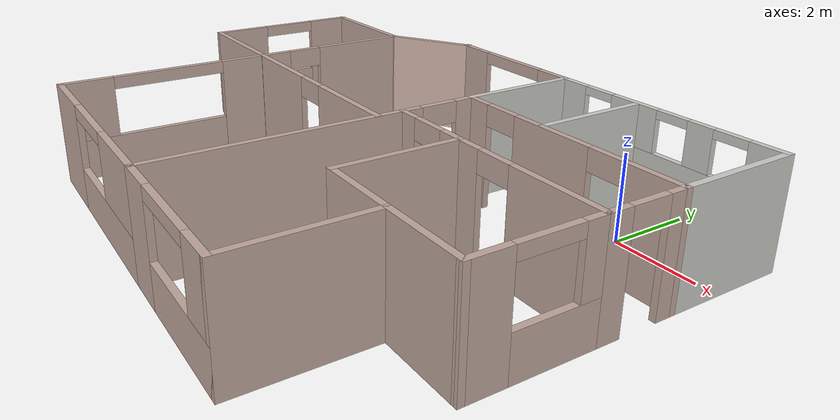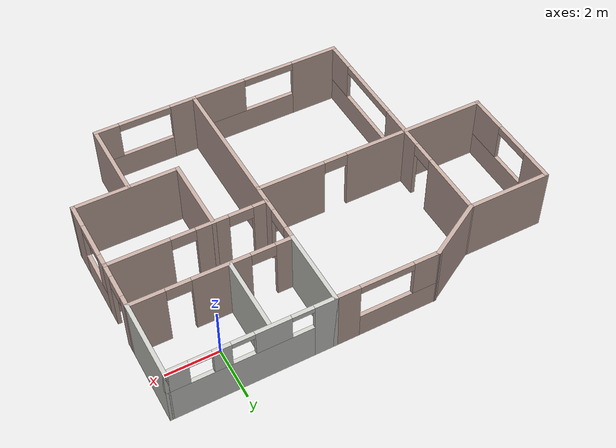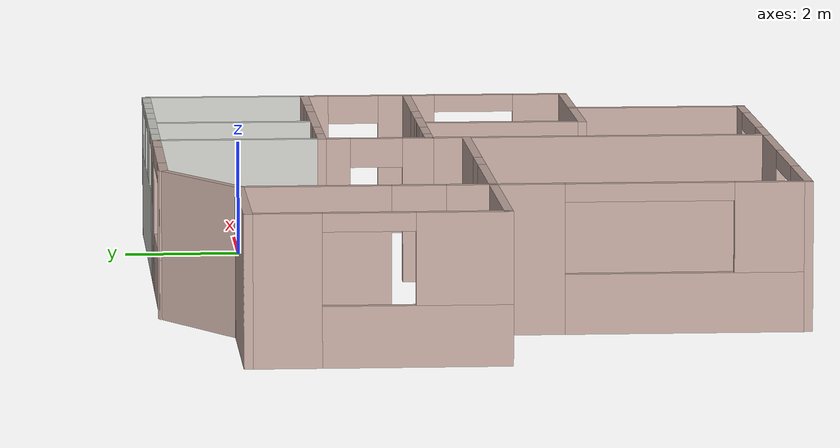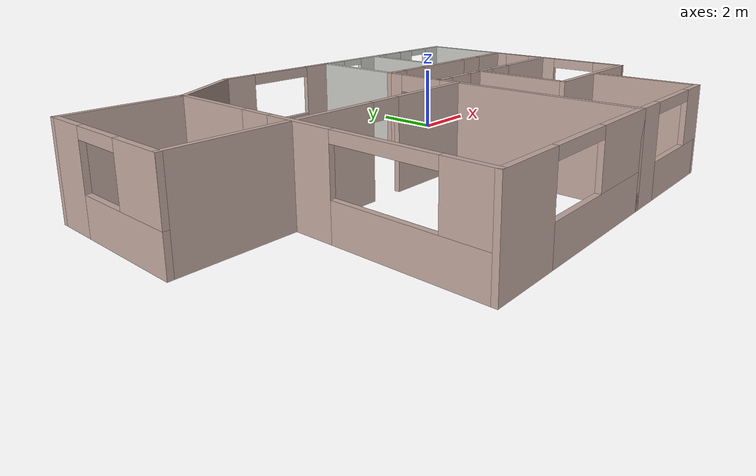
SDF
<?xml version='1.0'?>
<sdf version='1.6'>
  <model name='mybuilding'>
    <pose frame=''>-4.97663 -3.71127 0 0 -0 0</pose>
    <link name='Wall_0'>
      <pose frame=''>1.56663 1.48627 0 0 -0 -1.5708</pose>
      <visual name='Wall_0_Visual_0'>
        <pose frame=''>-0.7175 0 1.25 0 -0 0</pose>
        <geometry>
          <box>
            <size>0.565 0.15 2.5</size>
          </box>
        </geometry>
        <material>
          <script>
            <uri>file://media/materials/scripts/gazebo.material</uri>
            <name>Gazebo/Grey</name>
          </script>
          <ambient>0.760784 0.662745 0.627451 1</ambient>
        </material>
        <meta>
          <layer>0</layer>
        </meta>
      </visual>
      <collision name='Wall_0_Collision_0'>
        <geometry>
          <box>
            <size>0.565 0.15 2.5</size>
          </box>
        </geometry>
        <pose frame=''>-0.7175 0 1.25 0 -0 0</pose>
      </collision>
      <visual name='Wall_0_Visual_1'>
        <pose frame=''>0.7325 0 1.25 0 -0 0</pose>
        <geometry>
          <box>
            <size>0.535 0.15 2.5</size>
          </box>
        </geometry>
        <material>
          <script>
            <uri>file://media/materials/scripts/gazebo.material</uri>
            <name>Gazebo/Grey</name>
          </script>
          <ambient>0.760784 0.662745 0.627451 1</ambient>
        </material>
        <meta>
          <layer>0</layer>
        </meta>
      </visual>
      <collision name='Wall_0_Collision_1'>
        <geometry>
          <box>
            <size>0.535 0.15 2.5</size>
          </box>
        </geometry>
        <pose frame=''>0.7325 0 1.25 0 -0 0</pose>
      </collision>
      <visual name='Wall_0_Visual_2'>
        <pose frame=''>0.015 0 2.25 0 -0 0</pose>
        <geometry>
          <box>
            <size>0.9 0.15 0.5</size>
          </box>
        </geometry>
        <material>
          <script>
            <uri>file://media/materials/scripts/gazebo.material</uri>
            <name>Gazebo/Grey</name>
          </script>
          <ambient>0.760784 0.662745 0.627451 1</ambient>
        </material>
        <meta>
          <layer>0</layer>
        </meta>
      </visual>
      <collision name='Wall_0_Collision_2'>
        <geometry>
          <box>
            <size>0.9 0.15 0.5</size>
          </box>
        </geometry>
        <pose frame=''>0.015 0 2.25 0 -0 0</pose>
      </collision>
    </link>
    <link name='Wall_1'>
      <pose frame=''>4.49163 0.561274 0 0 -0 0</pose>
      <visual name='Wall_1_Visual_0'>
        <pose frame=''>-2.6925 0 1.25 0 -0 0</pose>
        <geometry>
          <box>
            <size>0.615 0.15 2.5</size>
          </box>
        </geometry>
        <material>
          <script>
            <uri>file://media/materials/scripts/gazebo.material</uri>
            <name>Gazebo/Grey</name>
          </script>
          <ambient>0.760784 0.662745 0.627451 1</ambient>
        </material>
        <meta>
          <layer>0</layer>
        </meta>
      </visual>
      <collision name='Wall_1_Collision_0'>
        <geometry>
          <box>
            <size>0.615 0.15 2.5</size>
          </box>
        </geometry>
        <pose frame=''>-2.6925 0 1.25 0 -0 0</pose>
      </collision>
      <visual name='Wall_1_Visual_1'>
        <pose frame=''>-0.88 0 1.25 0 -0 0</pose>
        <geometry>
          <box>
            <size>1.21 0.15 2.5</size>
          </box>
        </geometry>
        <material>
          <script>
            <uri>file://media/materials/scripts/gazebo.material</uri>
            <name>Gazebo/Grey</name>
          </script>
          <ambient>0.760784 0.662745 0.627451 1</ambient>
        </material>
        <meta>
          <layer>0</layer>
        </meta>
      </visual>
      <collision name='Wall_1_Collision_1'>
        <geometry>
          <box>
            <size>1.21 0.15 2.5</size>
          </box>
        </geometry>
        <pose frame=''>-0.88 0 1.25 0 -0 0</pose>
      </collision>
      <visual name='Wall_1_Visual_2'>
        <pose frame=''>1.8125 0 1.25 0 -0 0</pose>
        <geometry>
          <box>
            <size>2.375 0.15 2.5</size>
          </box>
        </geometry>
        <material>
          <script>
            <uri>file://media/materials/scripts/gazebo.material</uri>
            <name>Gazebo/Grey</name>
          </script>
          <ambient>0.760784 0.662745 0.627451 1</ambient>
        </material>
        <meta>
          <layer>0</layer>
        </meta>
      </visual>
      <collision name='Wall_1_Collision_2'>
        <geometry>
          <box>
            <size>2.375 0.15 2.5</size>
          </box>
        </geometry>
        <pose frame=''>1.8125 0 1.25 0 -0 0</pose>
      </collision>
      <visual name='Wall_1_Visual_3'>
        <pose frame=''>-1.935 0 2.25 0 -0 0</pose>
        <geometry>
          <box>
            <size>0.9 0.15 0.5</size>
          </box>
        </geometry>
        <material>
          <script>
            <uri>file://media/materials/scripts/gazebo.material</uri>
            <name>Gazebo/Grey</name>
          </script>
          <ambient>0.760784 0.662745 0.627451 1</ambient>
        </material>
        <meta>
          <layer>0</layer>
        </meta>
      </visual>
      <collision name='Wall_1_Collision_3'>
        <geometry>
          <box>
            <size>0.9 0.15 0.5</size>
          </box>
        </geometry>
        <pose frame=''>-1.935 0 2.25 0 -0 0</pose>
      </collision>
      <visual name='Wall_1_Visual_4'>
        <pose frame=''>0.175 0 2.25 0 -0 0</pose>
        <geometry>
          <box>
            <size>0.9 0.15 0.5</size>
          </box>
        </geometry>
        <material>
          <script>
            <uri>file://media/materials/scripts/gazebo.material</uri>
            <name>Gazebo/Grey</name>
          </script>
          <ambient>0.760784 0.662745 0.627451 1</ambient>
        </material>
        <meta>
          <layer>0</layer>
        </meta>
      </visual>
      <collision name='Wall_1_Collision_4'>
        <geometry>
          <box>
            <size>0.9 0.15 0.5</size>
          </box>
        </geometry>
        <pose frame=''>0.175 0 2.25 0 -0 0</pose>
      </collision>
    </link>
    <link name='Wall_10'>
      <pose frame=''>3.49163 -5.28873 0 0 -0 0</pose>
      <visual name='Wall_10_Visual_0'>
        <pose frame=''>-1.48371 0 1.25 0 -0 0</pose>
        <geometry>
          <box>
            <size>1.03258 0.15 2.5</size>
          </box>
        </geometry>
        <material>
          <script>
            <uri>file://media/materials/scripts/gazebo.material</uri>
            <name>Gazebo/Grey</name>
          </script>
          <ambient>0.760784 0.662745 0.627451 1</ambient>
        </material>
        <meta>
          <layer>0</layer>
        </meta>
      </visual>
      <collision name='Wall_10_Collision_0'>
        <geometry>
          <box>
            <size>1.03258 0.15 2.5</size>
          </box>
        </geometry>
        <pose frame=''>-1.48371 0 1.25 0 -0 0</pose>
      </collision>
      <visual name='Wall_10_Visual_1'>
        <pose frame=''>0.516287 0 0.5 0 -0 0</pose>
        <geometry>
          <box>
            <size>2.96742 0.15 1</size>
          </box>
        </geometry>
        <material>
          <script>
            <uri>file://media/materials/scripts/gazebo.material</uri>
            <name>Gazebo/Grey</name>
          </script>
          <ambient>0.760784 0.662745 0.627451 1</ambient>
        </material>
        <meta>
          <layer>0</layer>
        </meta>
      </visual>
      <collision name='Wall_10_Collision_1'>
        <geometry>
          <box>
            <size>2.96742 0.15 1</size>
          </box>
        </geometry>
        <pose frame=''>0.516287 0 0.5 0 -0 0</pose>
      </collision>
      <visual name='Wall_10_Visual_2'>
        <pose frame=''>1.51629 0 1.75 0 -0 0</pose>
        <geometry>
          <box>
            <size>0.967425 0.15 1.5</size>
          </box>
        </geometry>
        <material>
          <script>
            <uri>file://media/materials/scripts/gazebo.material</uri>
            <name>Gazebo/Grey</name>
          </script>
          <ambient>0.760784 0.662745 0.627451 1</ambient>
        </material>
        <meta>
          <layer>0</layer>
        </meta>
      </visual>
      <collision name='Wall_10_Collision_2'>
        <geometry>
          <box>
            <size>0.967425 0.15 1.5</size>
          </box>
        </geometry>
        <pose frame=''>1.51629 0 1.75 0 -0 0</pose>
      </collision>
      <visual name='Wall_10_Visual_3'>
        <pose frame=''>0.032575 0 2.35 0 -0 0</pose>
        <geometry>
          <box>
            <size>2 0.15 0.3</size>
          </box>
        </geometry>
        <material>
          <script>
            <uri>file://media/materials/scripts/gazebo.material</uri>
            <name>Gazebo/Grey</name>
          </script>
          <ambient>0.760784 0.662745 0.627451 1</ambient>
        </material>
        <meta>
          <layer>0</layer>
        </meta>
      </visual>
      <collision name='Wall_10_Collision_3'>
        <geometry>
          <box>
            <size>2 0.15 0.3</size>
          </box>
        </geometry>
        <pose frame=''>0.032575 0 2.35 0 -0 0</pose>
      </collision>
    </link>
    <link name='Wall_11'>
      <collision name='Wall_11_Collision'>
        <geometry>
          <box>
            <size>3.165 0.15 2.5</size>
          </box>
        </geometry>
        <pose frame=''>0 0 1.25 0 -0 0</pose>
      </collision>
      <visual name='Wall_11_Visual'>
        <pose frame=''>0 0 1.25 0 -0 0</pose>
        <geometry>
          <box>
            <size>3.165 0.15 2.5</size>
          </box>
        </geometry>
        <material>
          <script>
            <uri>file://media/materials/scripts/gazebo.material</uri>
            <name>Gazebo/Grey</name>
          </script>
          <ambient>0.760784 0.662745 0.627451 1</ambient>
        </material>
        <meta>
          <layer>0</layer>
        </meta>
      </visual>
      <pose frame=''>5.41663 -3.78123 0 0 -0 1.5708</pose>
    </link>
    <link name='Wall_13'>
      <collision name='Wall_13_Collision'>
        <geometry>
          <box>
            <size>3 0.15 2.5</size>
          </box>
        </geometry>
        <pose frame=''>0 0 1.25 0 -0 0</pose>
      </collision>
      <visual name='Wall_13_Visual'>
        <pose frame=''>0 0 1.25 0 -0 0</pose>
        <geometry>
          <box>
            <size>3 0.15 2.5</size>
          </box>
        </geometry>
        <material>
          <script>
            <uri>file://media/materials/scripts/gazebo.material</uri>
            <name>Gazebo/CeilingTiled</name>
          </script>
          <ambient>0.760784 0.662745 0.627451 1</ambient>
        </material>
        <meta>
          <layer>0</layer>
        </meta>
      </visual>
      <pose frame=''>1.56663 3.83627 0 0 -0 1.5708</pose>
    </link>
    <link name='Wall_14'>
      <pose frame=''>4.49163 5.26127 0 0 -0 0</pose>
      <visual name='Wall_14_Visual_0'>
        <pose frame=''>-2.57832 0 1.25 0 -0 0</pose>
        <geometry>
          <box>
            <size>0.843365 0.15 2.5</size>
          </box>
        </geometry>
        <material>
          <script>
            <uri>file://media/materials/scripts/gazebo.material</uri>
            <name>Gazebo/CeilingTiled</name>
          </script>
          <ambient>1 1 1 1</ambient>
        </material>
        <meta>
          <layer>0</layer>
        </meta>
      </visual>
      <collision name='Wall_14_Collision_0'>
        <geometry>
          <box>
            <size>0.843365 0.15 2.5</size>
          </box>
        </geometry>
        <pose frame=''>-2.57832 0 1.25 0 -0 0</pose>
      </collision>
      <visual name='Wall_14_Visual_1'>
        <pose frame=''>0.421683 0 0.75 0 -0 0</pose>
        <geometry>
          <box>
            <size>5.15663 0.15 1.5</size>
          </box>
        </geometry>
        <material>
          <script>
            <uri>file://media/materials/scripts/gazebo.material</uri>
            <name>Gazebo/CeilingTiled</name>
          </script>
          <ambient>1 1 1 1</ambient>
        </material>
        <meta>
          <layer>0</layer>
        </meta>
      </visual>
      <collision name='Wall_14_Collision_1'>
        <geometry>
          <box>
            <size>5.15663 0.15 1.5</size>
          </box>
        </geometry>
        <pose frame=''>0.421683 0 0.75 0 -0 0</pose>
      </collision>
      <visual name='Wall_14_Visual_2'>
        <pose frame=''>-0.718472 0 2 0 -0 0</pose>
        <geometry>
          <box>
            <size>1.27632 0.15 1</size>
          </box>
        </geometry>
        <material>
          <script>
            <uri>file://media/materials/scripts/gazebo.material</uri>
            <name>Gazebo/CeilingTiled</name>
          </script>
          <ambient>1 1 1 1</ambient>
        </material>
        <meta>
          <layer>0</layer>
        </meta>
      </visual>
      <collision name='Wall_14_Collision_2'>
        <geometry>
          <box>
            <size>1.27632 0.15 1</size>
          </box>
        </geometry>
        <pose frame=''>-0.718472 0 2 0 -0 0</pose>
      </collision>
      <visual name='Wall_14_Visual_3'>
        <pose frame=''>1.03384 0 2 0 -0 0</pose>
        <geometry>
          <box>
            <size>0.6283 0.15 1</size>
          </box>
        </geometry>
        <material>
          <script>
            <uri>file://media/materials/scripts/gazebo.material</uri>
            <name>Gazebo/CeilingTiled</name>
          </script>
          <ambient>1 1 1 1</ambient>
        </material>
        <meta>
          <layer>0</layer>
        </meta>
      </visual>
      <collision name='Wall_14_Collision_3'>
        <geometry>
          <box>
            <size>0.6283 0.15 1</size>
          </box>
        </geometry>
        <pose frame=''>1.03384 0 2 0 -0 0</pose>
      </collision>
      <visual name='Wall_14_Visual_4'>
        <pose frame=''>2.574 0 2 0 -0 0</pose>
        <geometry>
          <box>
            <size>0.85201 0.15 1</size>
          </box>
        </geometry>
        <material>
          <script>
            <uri>file://media/materials/scripts/gazebo.material</uri>
            <name>Gazebo/CeilingTiled</name>
          </script>
          <ambient>1 1 1 1</ambient>
        </material>
        <meta>
          <layer>0</layer>
        </meta>
      </visual>
      <collision name='Wall_14_Collision_4'>
        <geometry>
          <box>
            <size>0.85201 0.15 1</size>
          </box>
        </geometry>
        <pose frame=''>2.574 0 2 0 -0 0</pose>
      </collision>
      <visual name='Wall_14_Visual_5'>
        <pose frame=''>-1.75663 0 2.4 0 -0 0</pose>
        <geometry>
          <box>
            <size>0.8 0.15 0.2</size>
          </box>
        </geometry>
        <material>
          <script>
            <uri>file://media/materials/scripts/gazebo.material</uri>
            <name>Gazebo/CeilingTiled</name>
          </script>
          <ambient>1 1 1 1</ambient>
        </material>
        <meta>
          <layer>0</layer>
        </meta>
      </visual>
      <collision name='Wall_14_Collision_5'>
        <geometry>
          <box>
            <size>0.8 0.15 0.2</size>
          </box>
        </geometry>
        <pose frame=''>-1.75663 0 2.4 0 -0 0</pose>
      </collision>
      <visual name='Wall_14_Visual_6'>
        <pose frame=''>0.31969 0 2.4 0 -0 0</pose>
        <geometry>
          <box>
            <size>0.8 0.15 0.2</size>
          </box>
        </geometry>
        <material>
          <script>
            <uri>file://media/materials/scripts/gazebo.material</uri>
            <name>Gazebo/CeilingTiled</name>
          </script>
          <ambient>1 1 1 1</ambient>
        </material>
        <meta>
          <layer>0</layer>
        </meta>
      </visual>
      <collision name='Wall_14_Collision_6'>
        <geometry>
          <box>
            <size>0.8 0.15 0.2</size>
          </box>
        </geometry>
        <pose frame=''>0.31969 0 2.4 0 -0 0</pose>
      </collision>
      <visual name='Wall_14_Visual_7'>
        <pose frame=''>1.74799 0 2.4 0 -0 0</pose>
        <geometry>
          <box>
            <size>0.8 0.15 0.2</size>
          </box>
        </geometry>
        <material>
          <script>
            <uri>file://media/materials/scripts/gazebo.material</uri>
            <name>Gazebo/CeilingTiled</name>
          </script>
          <ambient>1 1 1 1</ambient>
        </material>
        <meta>
          <layer>0</layer>
        </meta>
      </visual>
      <collision name='Wall_14_Collision_7'>
        <geometry>
          <box>
            <size>0.8 0.15 0.2</size>
          </box>
        </geometry>
        <pose frame=''>1.74799 0 2.4 0 -0 0</pose>
      </collision>
    </link>
    <link name='Wall_15'>
      <collision name='Wall_15_Collision'>
        <geometry>
          <box>
            <size>3 0.15 2.5</size>
          </box>
        </geometry>
        <pose frame=''>0 0 1.25 0 -0 0</pose>
      </collision>
      <visual name='Wall_15_Visual'>
        <pose frame=''>0 0 1.25 0 -0 0</pose>
        <geometry>
          <box>
            <size>3 0.15 2.5</size>
          </box>
        </geometry>
        <material>
          <script>
            <uri>file://media/materials/scripts/gazebo.material</uri>
            <name>Gazebo/CeilingTiled</name>
          </script>
          <ambient>1 1 1 1</ambient>
        </material>
        <meta>
          <layer>0</layer>
        </meta>
      </visual>
      <pose frame=''>7.41663 3.83627 0 0 -0 -1.5708</pose>
    </link>
    <link name='Wall_17'>
      <collision name='Wall_17_Collision'>
        <geometry>
          <box>
            <size>2.81 0.15 2.5</size>
          </box>
        </geometry>
        <pose frame=''>0 0 1.25 0 -0 0</pose>
      </collision>
      <visual name='Wall_17_Visual'>
        <pose frame=''>0 0 1.25 0 -0 0</pose>
        <geometry>
          <box>
            <size>2.81 0.15 2.5</size>
          </box>
        </geometry>
        <material>
          <script>
            <uri>file://media/materials/scripts/gazebo.material</uri>
            <name>Gazebo/CeilingTiled</name>
          </script>
          <ambient>1 1 1 1</ambient>
        </material>
        <meta>
          <layer>0</layer>
        </meta>
      </visual>
      <pose frame=''>3.85863 3.79127 0 0 -0 1.5708</pose>
    </link>
    <link name='Wall_19'>
      <pose frame=''>-0.358374 5.26127 0 0 -0 3.14159</pose>
      <visual name='Wall_19_Visual_0'>
        <pose frame=''>-1.51488 0 1.25 0 -0 0</pose>
        <geometry>
          <box>
            <size>0.970244 0.15 2.5</size>
          </box>
        </geometry>
        <material>
          <script>
            <uri>file://media/materials/scripts/gazebo.material</uri>
            <name>Gazebo/Grey</name>
          </script>
          <ambient>0.760784 0.662745 0.627451 1</ambient>
        </material>
        <meta>
          <layer>0</layer>
        </meta>
      </visual>
      <collision name='Wall_19_Collision_0'>
        <geometry>
          <box>
            <size>0.970244 0.15 2.5</size>
          </box>
        </geometry>
        <pose frame=''>-1.51488 0 1.25 0 -0 0</pose>
      </collision>
      <visual name='Wall_19_Visual_1'>
        <pose frame=''>0.485122 0 0.5 0 -0 0</pose>
        <geometry>
          <box>
            <size>3.02976 0.15 1</size>
          </box>
        </geometry>
        <material>
          <script>
            <uri>file://media/materials/scripts/gazebo.material</uri>
            <name>Gazebo/Grey</name>
          </script>
          <ambient>0.760784 0.662745 0.627451 1</ambient>
        </material>
        <meta>
          <layer>0</layer>
        </meta>
      </visual>
      <collision name='Wall_19_Collision_1'>
        <geometry>
          <box>
            <size>3.02976 0.15 1</size>
          </box>
        </geometry>
        <pose frame=''>0.485122 0 0.5 0 -0 0</pose>
      </collision>
      <visual name='Wall_19_Visual_2'>
        <pose frame=''>1.48512 0 1.75 0 -0 0</pose>
        <geometry>
          <box>
            <size>1.02976 0.15 1.5</size>
          </box>
        </geometry>
        <material>
          <script>
            <uri>file://media/materials/scripts/gazebo.material</uri>
            <name>Gazebo/Grey</name>
          </script>
          <ambient>0.760784 0.662745 0.627451 1</ambient>
        </material>
        <meta>
          <layer>0</layer>
        </meta>
      </visual>
      <collision name='Wall_19_Collision_2'>
        <geometry>
          <box>
            <size>1.02976 0.15 1.5</size>
          </box>
        </geometry>
        <pose frame=''>1.48512 0 1.75 0 -0 0</pose>
      </collision>
      <visual name='Wall_19_Visual_3'>
        <pose frame=''>-0.029756 0 2.35 0 -0 0</pose>
        <geometry>
          <box>
            <size>2 0.15 0.3</size>
          </box>
        </geometry>
        <material>
          <script>
            <uri>file://media/materials/scripts/gazebo.material</uri>
            <name>Gazebo/Grey</name>
          </script>
          <ambient>0.760784 0.662745 0.627451 1</ambient>
        </material>
        <meta>
          <layer>0</layer>
        </meta>
      </visual>
      <collision name='Wall_19_Collision_3'>
        <geometry>
          <box>
            <size>2 0.15 0.3</size>
          </box>
        </geometry>
        <pose frame=''>-0.029756 0 2.35 0 -0 0</pose>
      </collision>
    </link>
    <link name='Wall_2'>
      <pose frame=''>7.41663 1.48627 0 0 -0 1.5708</pose>
      <visual name='Wall_2_Visual_0'>
        <pose frame=''>-0.7025 0 1.25 0 -0 0</pose>
        <geometry>
          <box>
            <size>0.595 0.15 2.5</size>
          </box>
        </geometry>
        <material>
          <script>
            <uri>file://media/materials/scripts/gazebo.material</uri>
            <name>Gazebo/Grey</name>
          </script>
          <ambient>0.760784 0.662745 0.627451 1</ambient>
        </material>
        <meta>
          <layer>0</layer>
        </meta>
      </visual>
      <collision name='Wall_2_Collision_0'>
        <geometry>
          <box>
            <size>0.595 0.15 2.5</size>
          </box>
        </geometry>
        <pose frame=''>-0.7025 0 1.25 0 -0 0</pose>
      </collision>
      <visual name='Wall_2_Visual_1'>
        <pose frame=''>0.7475 0 1.25 0 -0 0</pose>
        <geometry>
          <box>
            <size>0.505 0.15 2.5</size>
          </box>
        </geometry>
        <material>
          <script>
            <uri>file://media/materials/scripts/gazebo.material</uri>
            <name>Gazebo/Grey</name>
          </script>
          <ambient>0.760784 0.662745 0.627451 1</ambient>
        </material>
        <meta>
          <layer>0</layer>
        </meta>
      </visual>
      <collision name='Wall_2_Collision_1'>
        <geometry>
          <box>
            <size>0.505 0.15 2.5</size>
          </box>
        </geometry>
        <pose frame=''>0.7475 0 1.25 0 -0 0</pose>
      </collision>
      <visual name='Wall_2_Visual_2'>
        <pose frame=''>0.045 0 2.25 0 -0 0</pose>
        <geometry>
          <box>
            <size>0.9 0.15 0.5</size>
          </box>
        </geometry>
        <material>
          <script>
            <uri>file://media/materials/scripts/gazebo.material</uri>
            <name>Gazebo/Grey</name>
          </script>
          <ambient>0.760784 0.662745 0.627451 1</ambient>
        </material>
        <meta>
          <layer>0</layer>
        </meta>
      </visual>
      <collision name='Wall_2_Collision_2'>
        <geometry>
          <box>
            <size>0.9 0.15 0.5</size>
          </box>
        </geometry>
        <pose frame=''>0.045 0 2.25 0 -0 0</pose>
      </collision>
    </link>
    <link name='Wall_20'>
      <collision name='Wall_20_Collision'>
        <geometry>
          <box>
            <size>2.5 0.15 2.5</size>
          </box>
        </geometry>
        <pose frame=''>0 0 1.25 0 -0 0</pose>
      </collision>
      <visual name='Wall_20_Visual'>
        <pose frame=''>0 0 1.25 0 -0 0</pose>
        <geometry>
          <box>
            <size>2.5 0.15 2.5</size>
          </box>
        </geometry>
        <material>
          <script>
            <uri>file://media/materials/scripts/gazebo.material</uri>
            <name>Gazebo/Grey</name>
          </script>
          <ambient>0.760784 0.662745 0.627451 1</ambient>
        </material>
        <meta>
          <layer>0</layer>
        </meta>
      </visual>
      <pose frame=''>-3.30096 4.67377 0 0 -0 -2.61799</pose>
    </link>
    <link name='Wall_21'>
      <pose frame=''>-4.31846 -0.601226 0 0 -0 -1.57078</pose>
      <visual name='Wall_21_Visual_0'>
        <pose frame=''>-3.47885 0 1.25 0 -0 0</pose>
        <geometry>
          <box>
            <size>2.5673 0.15 2.5</size>
          </box>
        </geometry>
        <material>
          <script>
            <uri>file://media/materials/scripts/gazebo.material</uri>
            <name>Gazebo/Grey</name>
          </script>
          <ambient>0.760784 0.662745 0.627451 1</ambient>
        </material>
        <meta>
          <layer>0</layer>
        </meta>
      </visual>
      <collision name='Wall_21_Collision_0'>
        <geometry>
          <box>
            <size>2.5673 0.15 2.5</size>
          </box>
        </geometry>
        <pose frame=''>-3.47885 0 1.25 0 -0 0</pose>
      </collision>
      <visual name='Wall_21_Visual_1'>
        <pose frame=''>-0.317714 0 1.25 0 -0 0</pose>
        <geometry>
          <box>
            <size>1.95498 0.15 2.5</size>
          </box>
        </geometry>
        <material>
          <script>
            <uri>file://media/materials/scripts/gazebo.material</uri>
            <name>Gazebo/Grey</name>
          </script>
          <ambient>0.760784 0.662745 0.627451 1</ambient>
        </material>
        <meta>
          <layer>0</layer>
        </meta>
      </visual>
      <collision name='Wall_21_Collision_1'>
        <geometry>
          <box>
            <size>1.95498 0.15 2.5</size>
          </box>
        </geometry>
        <pose frame=''>-0.317714 0 1.25 0 -0 0</pose>
      </collision>
      <visual name='Wall_21_Visual_2'>
        <pose frame=''>2.71114 0 0.5 0 -0 0</pose>
        <geometry>
          <box>
            <size>4.10272 0.15 1</size>
          </box>
        </geometry>
        <material>
          <script>
            <uri>file://media/materials/scripts/gazebo.material</uri>
            <name>Gazebo/Grey</name>
          </script>
          <ambient>0.760784 0.662745 0.627451 1</ambient>
        </material>
        <meta>
          <layer>0</layer>
        </meta>
      </visual>
      <collision name='Wall_21_Collision_2'>
        <geometry>
          <box>
            <size>4.10272 0.15 1</size>
          </box>
        </geometry>
        <pose frame=''>2.71114 0 0.5 0 -0 0</pose>
      </collision>
      <visual name='Wall_21_Visual_3'>
        <pose frame=''>4.11114 0 1.75 0 -0 0</pose>
        <geometry>
          <box>
            <size>1.30272 0.15 1.5</size>
          </box>
        </geometry>
        <material>
          <script>
            <uri>file://media/materials/scripts/gazebo.material</uri>
            <name>Gazebo/Grey</name>
          </script>
          <ambient>0.760784 0.662745 0.627451 1</ambient>
        </material>
        <meta>
          <layer>0</layer>
        </meta>
      </visual>
      <collision name='Wall_21_Collision_3'>
        <geometry>
          <box>
            <size>1.30272 0.15 1.5</size>
          </box>
        </geometry>
        <pose frame=''>4.11114 0 1.75 0 -0 0</pose>
      </collision>
      <visual name='Wall_21_Visual_4'>
        <pose frame=''>-1.7452 0 2.25 0 -0 0</pose>
        <geometry>
          <box>
            <size>0.9 0.15 0.5</size>
          </box>
        </geometry>
        <material>
          <script>
            <uri>file://media/materials/scripts/gazebo.material</uri>
            <name>Gazebo/Grey</name>
          </script>
          <ambient>0.760784 0.662745 0.627451 1</ambient>
        </material>
        <meta>
          <layer>0</layer>
        </meta>
      </visual>
      <collision name='Wall_21_Collision_4'>
        <geometry>
          <box>
            <size>0.9 0.15 0.5</size>
          </box>
        </geometry>
        <pose frame=''>-1.7452 0 2.25 0 -0 0</pose>
      </collision>
      <visual name='Wall_21_Visual_5'>
        <pose frame=''>2.05978 0 2.35 0 -0 0</pose>
        <geometry>
          <box>
            <size>2.8 0.15 0.3</size>
          </box>
        </geometry>
        <material>
          <script>
            <uri>file://media/materials/scripts/gazebo.material</uri>
            <name>Gazebo/Grey</name>
          </script>
          <ambient>0.760784 0.662745 0.627451 1</ambient>
        </material>
        <meta>
          <layer>0</layer>
        </meta>
      </visual>
      <collision name='Wall_21_Collision_5'>
        <geometry>
          <box>
            <size>2.8 0.15 0.3</size>
          </box>
        </geometry>
        <pose frame=''>2.05978 0 2.35 0 -0 0</pose>
      </collision>
    </link>
    <link name='Wall_22'>
      <pose frame=''>-1.37587 -5.28873 0 0 -0 0</pose>
      <visual name='Wall_22_Visual_0'>
        <pose frame=''>-2.06844 0 1.25 0 -0 0</pose>
        <geometry>
          <box>
            <size>1.89834 0.15 2.5</size>
          </box>
        </geometry>
        <material>
          <script>
            <uri>file://media/materials/scripts/gazebo.material</uri>
            <name>Gazebo/Grey</name>
          </script>
          <ambient>0.760784 0.662745 0.627451 1</ambient>
        </material>
        <meta>
          <layer>0</layer>
        </meta>
      </visual>
      <collision name='Wall_22_Collision_0'>
        <geometry>
          <box>
            <size>1.89834 0.15 2.5</size>
          </box>
        </geometry>
        <pose frame=''>-2.06844 0 1.25 0 -0 0</pose>
      </collision>
      <visual name='Wall_22_Visual_1'>
        <pose frame=''>0.949169 0 0.5 0 -0 0</pose>
        <geometry>
          <box>
            <size>4.13687 0.15 1</size>
          </box>
        </geometry>
        <material>
          <script>
            <uri>file://media/materials/scripts/gazebo.material</uri>
            <name>Gazebo/Grey</name>
          </script>
          <ambient>0.760784 0.662745 0.627451 1</ambient>
        </material>
        <meta>
          <layer>0</layer>
        </meta>
      </visual>
      <collision name='Wall_22_Collision_1'>
        <geometry>
          <box>
            <size>4.13687 0.15 1</size>
          </box>
        </geometry>
        <pose frame=''>0.949169 0 0.5 0 -0 0</pose>
      </collision>
      <visual name='Wall_22_Visual_2'>
        <pose frame=''>1.94917 0 1.75 0 -0 0</pose>
        <geometry>
          <box>
            <size>2.13687 0.15 1.5</size>
          </box>
        </geometry>
        <material>
          <script>
            <uri>file://media/materials/scripts/gazebo.material</uri>
            <name>Gazebo/Grey</name>
          </script>
          <ambient>0.760784 0.662745 0.627451 1</ambient>
        </material>
        <meta>
          <layer>0</layer>
        </meta>
      </visual>
      <collision name='Wall_22_Collision_2'>
        <geometry>
          <box>
            <size>2.13687 0.15 1.5</size>
          </box>
        </geometry>
        <pose frame=''>1.94917 0 1.75 0 -0 0</pose>
      </collision>
      <visual name='Wall_22_Visual_3'>
        <pose frame=''>-0.119267 0 2.35 0 -0 0</pose>
        <geometry>
          <box>
            <size>2 0.15 0.3</size>
          </box>
        </geometry>
        <material>
          <script>
            <uri>file://media/materials/scripts/gazebo.material</uri>
            <name>Gazebo/Grey</name>
          </script>
          <ambient>0.760784 0.662745 0.627451 1</ambient>
        </material>
        <meta>
          <layer>0</layer>
        </meta>
      </visual>
      <collision name='Wall_22_Collision_3'>
        <geometry>
          <box>
            <size>2 0.15 0.3</size>
          </box>
        </geometry>
        <pose frame=''>-0.119267 0 2.35 0 -0 0</pose>
      </collision>
    </link>
    <link name='Wall_24'>
      <pose frame=''>-1.37819 -0.082545 0 0 -0 6.2e-05</pose>
      <visual name='Wall_24_Visual_0'>
        <pose frame=''>-1.76034 0 1.25 0 -0 0</pose>
        <geometry>
          <box>
            <size>2.47931 0.15 2.5</size>
          </box>
        </geometry>
        <material>
          <script>
            <uri>file://media/materials/scripts/gazebo.material</uri>
            <name>Gazebo/Grey</name>
          </script>
          <ambient>0.760784 0.662745 0.627451 1</ambient>
        </material>
        <meta>
          <layer>0</layer>
        </meta>
      </visual>
      <collision name='Wall_24_Collision_0'>
        <geometry>
          <box>
            <size>2.47931 0.15 2.5</size>
          </box>
        </geometry>
        <pose frame=''>-1.76034 0 1.25 0 -0 0</pose>
      </collision>
      <visual name='Wall_24_Visual_1'>
        <pose frame=''>1.68966 0 1.25 0 -0 0</pose>
        <geometry>
          <box>
            <size>2.62069 0.15 2.5</size>
          </box>
        </geometry>
        <material>
          <script>
            <uri>file://media/materials/scripts/gazebo.material</uri>
            <name>Gazebo/Grey</name>
          </script>
          <ambient>0.760784 0.662745 0.627451 1</ambient>
        </material>
        <meta>
          <layer>0</layer>
        </meta>
      </visual>
      <collision name='Wall_24_Collision_1'>
        <geometry>
          <box>
            <size>2.62069 0.15 2.5</size>
          </box>
        </geometry>
        <pose frame=''>1.68966 0 1.25 0 -0 0</pose>
      </collision>
      <visual name='Wall_24_Visual_2'>
        <pose frame=''>-0.070687 0 2.25 0 -0 0</pose>
        <geometry>
          <box>
            <size>0.9 0.15 0.5</size>
          </box>
        </geometry>
        <material>
          <script>
            <uri>file://media/materials/scripts/gazebo.material</uri>
            <name>Gazebo/Grey</name>
          </script>
          <ambient>0.760784 0.662745 0.627451 1</ambient>
        </material>
        <meta>
          <layer>0</layer>
        </meta>
      </visual>
      <collision name='Wall_24_Collision_2'>
        <geometry>
          <box>
            <size>0.9 0.15 0.5</size>
          </box>
        </geometry>
        <pose frame=''>-0.070687 0 2.25 0 -0 0</pose>
      </collision>
    </link>
    <link name='Wall_26'>
      <collision name='Wall_26_Collision'>
        <geometry>
          <box>
            <size>3.25 0.15 2.5</size>
          </box>
        </geometry>
        <pose frame=''>0 0 1.25 0 -0 0</pose>
      </collision>
      <visual name='Wall_26_Visual'>
        <pose frame=''>0 0 1.25 0 -0 0</pose>
        <geometry>
          <box>
            <size>3.25 0.15 2.5</size>
          </box>
        </geometry>
        <material>
          <script>
            <uri>file://media/materials/scripts/gazebo.material</uri>
            <name>Gazebo/Grey</name>
          </script>
          <ambient>0.760784 0.662745 0.627451 1</ambient>
        </material>
        <meta>
          <layer>0</layer>
        </meta>
      </visual>
      <pose frame=''>-5.86853 4.08627 0 0 -0 3.14159</pose>
    </link>
    <link name='Wall_27'>
      <pose frame=''>-7.41845 2.00177 0 0 -0 -1.57076</pose>
      <visual name='Wall_27_Visual_0'>
        <pose frame=''>-1.53124 0 1.25 0 -0 0</pose>
        <geometry>
          <box>
            <size>1.25652 0.15 2.5</size>
          </box>
        </geometry>
        <material>
          <script>
            <uri>file://media/materials/scripts/gazebo.material</uri>
            <name>Gazebo/Grey</name>
          </script>
          <ambient>0.760784 0.662745 0.627451 1</ambient>
        </material>
        <meta>
          <layer>0</layer>
        </meta>
      </visual>
      <collision name='Wall_27_Collision_0'>
        <geometry>
          <box>
            <size>1.25652 0.15 2.5</size>
          </box>
        </geometry>
        <pose frame=''>-1.53124 0 1.25 0 -0 0</pose>
      </collision>
      <visual name='Wall_27_Visual_1'>
        <pose frame=''>0.628263 0 0.5 0 -0 0</pose>
        <geometry>
          <box>
            <size>3.06248 0.15 1</size>
          </box>
        </geometry>
        <material>
          <script>
            <uri>file://media/materials/scripts/gazebo.material</uri>
            <name>Gazebo/Grey</name>
          </script>
          <ambient>0.760784 0.662745 0.627451 1</ambient>
        </material>
        <meta>
          <layer>0</layer>
        </meta>
      </visual>
      <collision name='Wall_27_Collision_1'>
        <geometry>
          <box>
            <size>3.06248 0.15 1</size>
          </box>
        </geometry>
        <pose frame=''>0.628263 0 0.5 0 -0 0</pose>
      </collision>
      <visual name='Wall_27_Visual_2'>
        <pose frame=''>1.37826 0 1.75 0 -0 0</pose>
        <geometry>
          <box>
            <size>1.56248 0.15 1.5</size>
          </box>
        </geometry>
        <material>
          <script>
            <uri>file://media/materials/scripts/gazebo.material</uri>
            <name>Gazebo/Grey</name>
          </script>
          <ambient>0.760784 0.662745 0.627451 1</ambient>
        </material>
        <meta>
          <layer>0</layer>
        </meta>
      </visual>
      <collision name='Wall_27_Collision_2'>
        <geometry>
          <box>
            <size>1.56248 0.15 1.5</size>
          </box>
        </geometry>
        <pose frame=''>1.37826 0 1.75 0 -0 0</pose>
      </collision>
      <visual name='Wall_27_Visual_3'>
        <pose frame=''>-0.152975 0 2.35 0 -0 0</pose>
        <geometry>
          <box>
            <size>1.5 0.15 0.3</size>
          </box>
        </geometry>
        <material>
          <script>
            <uri>file://media/materials/scripts/gazebo.material</uri>
            <name>Gazebo/Grey</name>
          </script>
          <ambient>0.760784 0.662745 0.627451 1</ambient>
        </material>
        <meta>
          <layer>0</layer>
        </meta>
      </visual>
      <collision name='Wall_27_Collision_3'>
        <geometry>
          <box>
            <size>1.5 0.15 0.3</size>
          </box>
        </geometry>
        <pose frame=''>-0.152975 0 2.35 0 -0 0</pose>
      </collision>
    </link>
    <link name='Wall_28'>
      <collision name='Wall_28_Collision'>
        <geometry>
          <box>
            <size>3.265 0.15 2.5</size>
          </box>
        </geometry>
        <pose frame=''>0 0 1.25 0 -0 0</pose>
      </collision>
      <visual name='Wall_28_Visual'>
        <pose frame=''>0 0 1.25 0 -0 0</pose>
        <geometry>
          <box>
            <size>3.265 0.15 2.5</size>
          </box>
        </geometry>
        <material>
          <script>
            <uri>file://media/materials/scripts/gazebo.material</uri>
            <name>Gazebo/Grey</name>
          </script>
          <ambient>0.760784 0.662745 0.627451 1</ambient>
        </material>
        <meta>
          <layer>0</layer>
        </meta>
      </visual>
      <pose frame=''>-5.86087 -0.082726 0 0 -0 0</pose>
    </link>
    <link name='Wall_3'>
      <pose frame=''>4.49163 2.41127 0 0 -0 3.14159</pose>
      <visual name='Wall_3_Visual_0'>
        <pose frame=''>-2.3175 0 1.25 0 -0 0</pose>
        <geometry>
          <box>
            <size>1.365 0.15 2.5</size>
          </box>
        </geometry>
        <material>
          <script>
            <uri>file://media/materials/scripts/gazebo.material</uri>
            <name>Gazebo/Grey</name>
          </script>
          <ambient>0.760784 0.662745 0.627451 1</ambient>
        </material>
        <meta>
          <layer>0</layer>
        </meta>
      </visual>
      <collision name='Wall_3_Collision_0'>
        <geometry>
          <box>
            <size>1.365 0.15 2.5</size>
          </box>
        </geometry>
        <pose frame=''>-2.3175 0 1.25 0 -0 0</pose>
      </collision>
      <visual name='Wall_3_Visual_1'>
        <pose frame=''>0.325 0 1.25 0 -0 0</pose>
        <geometry>
          <box>
            <size>2.12 0.15 2.5</size>
          </box>
        </geometry>
        <material>
          <script>
            <uri>file://media/materials/scripts/gazebo.material</uri>
            <name>Gazebo/Grey</name>
          </script>
          <ambient>0.760784 0.662745 0.627451 1</ambient>
        </material>
        <meta>
          <layer>0</layer>
        </meta>
      </visual>
      <collision name='Wall_3_Collision_1'>
        <geometry>
          <box>
            <size>2.12 0.15 2.5</size>
          </box>
        </geometry>
        <pose frame=''>0.325 0 1.25 0 -0 0</pose>
      </collision>
      <visual name='Wall_3_Visual_2'>
        <pose frame=''>2.6425 0 1.25 0 -0 0</pose>
        <geometry>
          <box>
            <size>0.715 0.15 2.5</size>
          </box>
        </geometry>
        <material>
          <script>
            <uri>file://media/materials/scripts/gazebo.material</uri>
            <name>Gazebo/Grey</name>
          </script>
          <ambient>0.760784 0.662745 0.627451 1</ambient>
        </material>
        <meta>
          <layer>0</layer>
        </meta>
      </visual>
      <collision name='Wall_3_Collision_2'>
        <geometry>
          <box>
            <size>0.715 0.15 2.5</size>
          </box>
        </geometry>
        <pose frame=''>2.6425 0 1.25 0 -0 0</pose>
      </collision>
      <visual name='Wall_3_Visual_3'>
        <pose frame=''>-1.185 0 2.25 0 -0 0</pose>
        <geometry>
          <box>
            <size>0.9 0.15 0.5</size>
          </box>
        </geometry>
        <material>
          <script>
            <uri>file://media/materials/scripts/gazebo.material</uri>
            <name>Gazebo/Grey</name>
          </script>
          <ambient>0.760784 0.662745 0.627451 1</ambient>
        </material>
        <meta>
          <layer>0</layer>
        </meta>
      </visual>
      <collision name='Wall_3_Collision_3'>
        <geometry>
          <box>
            <size>0.9 0.15 0.5</size>
          </box>
        </geometry>
        <pose frame=''>-1.185 0 2.25 0 -0 0</pose>
      </collision>
      <visual name='Wall_3_Visual_4'>
        <pose frame=''>1.835 0 2.25 0 -0 0</pose>
        <geometry>
          <box>
            <size>0.9 0.15 0.5</size>
          </box>
        </geometry>
        <material>
          <script>
            <uri>file://media/materials/scripts/gazebo.material</uri>
            <name>Gazebo/Grey</name>
          </script>
          <ambient>0.760784 0.662745 0.627451 1</ambient>
        </material>
        <meta>
          <layer>0</layer>
        </meta>
      </visual>
      <collision name='Wall_3_Collision_4'>
        <geometry>
          <box>
            <size>0.9 0.15 0.5</size>
          </box>
        </geometry>
        <pose frame=''>1.835 0 2.25 0 -0 0</pose>
      </collision>
    </link>
    <link name='Wall_5'>
      <collision name='Wall_5_Collision'>
        <geometry>
          <box>
            <size>2.984 0.15 2.5</size>
          </box>
        </geometry>
        <pose frame=''>0 0 1.25 0 -0 0</pose>
      </collision>
      <visual name='Wall_5_Visual'>
        <pose frame=''>0 0 1.25 0 -0 0</pose>
        <geometry>
          <box>
            <size>2.984 0.15 2.5</size>
          </box>
        </geometry>
        <material>
          <script>
            <uri>file://media/materials/scripts/gazebo.material</uri>
            <name>Gazebo/Grey</name>
          </script>
          <ambient>0.760784 0.662745 0.627451 1</ambient>
        </material>
        <meta>
          <layer>0</layer>
        </meta>
      </visual>
      <pose frame=''>3.56863 -0.853726 0 0 -0 -1.5708</pose>
    </link>
    <link name='Wall_6'>
      <collision name='Wall_6_Collision'>
        <geometry>
          <box>
            <size>4 0.15 2.5</size>
          </box>
        </geometry>
        <pose frame=''>0 0 1.25 0 -0 0</pose>
      </collision>
      <visual name='Wall_6_Visual'>
        <pose frame=''>0 0 1.25 0 -0 0</pose>
        <geometry>
          <box>
            <size>4 0.15 2.5</size>
          </box>
        </geometry>
        <material>
          <script>
            <uri>file://media/materials/scripts/gazebo.material</uri>
            <name>Gazebo/Grey</name>
          </script>
          <ambient>0.760784 0.662745 0.627451 1</ambient>
        </material>
        <meta>
          <layer>0</layer>
        </meta>
      </visual>
      <pose frame=''>5.49353 -2.27077 0 0 -0 -2.1e-05</pose>
    </link>
    <link name='Wall_7'>
      <pose frame=''>7.41753 -0.854766 0 0 -0 1.57144</pose>
      <visual name='Wall_7_Visual_0'>
        <pose frame=''>-0.998695 0 1.25 0 -0 0</pose>
        <geometry>
          <box>
            <size>0.984691 0.15 2.5</size>
          </box>
        </geometry>
        <material>
          <script>
            <uri>file://media/materials/scripts/gazebo.material</uri>
            <name>Gazebo/Grey</name>
          </script>
          <ambient>0.760784 0.662745 0.627451 1</ambient>
        </material>
        <meta>
          <layer>0</layer>
        </meta>
      </visual>
      <collision name='Wall_7_Collision_0'>
        <geometry>
          <box>
            <size>0.984691 0.15 2.5</size>
          </box>
        </geometry>
        <pose frame=''>-0.998695 0 1.25 0 -0 0</pose>
      </collision>
      <visual name='Wall_7_Visual_1'>
        <pose frame=''>0.492345 0 0.5 0 -0 0</pose>
        <geometry>
          <box>
            <size>1.99739 0.15 1</size>
          </box>
        </geometry>
        <material>
          <script>
            <uri>file://media/materials/scripts/gazebo.material</uri>
            <name>Gazebo/Grey</name>
          </script>
          <ambient>0.760784 0.662745 0.627451 1</ambient>
        </material>
        <meta>
          <layer>0</layer>
        </meta>
      </visual>
      <collision name='Wall_7_Collision_1'>
        <geometry>
          <box>
            <size>1.99739 0.15 1</size>
          </box>
        </geometry>
        <pose frame=''>0.492345 0 0.5 0 -0 0</pose>
      </collision>
      <visual name='Wall_7_Visual_2'>
        <pose frame=''>1.20484 0 1.75 0 -0 0</pose>
        <geometry>
          <box>
            <size>0.57239 0.15 1.5</size>
          </box>
        </geometry>
        <material>
          <script>
            <uri>file://media/materials/scripts/gazebo.material</uri>
            <name>Gazebo/Grey</name>
          </script>
          <ambient>0.760784 0.662745 0.627451 1</ambient>
        </material>
        <meta>
          <layer>0</layer>
        </meta>
      </visual>
      <collision name='Wall_7_Collision_2'>
        <geometry>
          <box>
            <size>0.57239 0.15 1.5</size>
          </box>
        </geometry>
        <pose frame=''>1.20484 0 1.75 0 -0 0</pose>
      </collision>
      <visual name='Wall_7_Visual_3'>
        <pose frame=''>0.20615 0 2.35 0 -0 0</pose>
        <geometry>
          <box>
            <size>1.425 0.15 0.3</size>
          </box>
        </geometry>
        <material>
          <script>
            <uri>file://media/materials/scripts/gazebo.material</uri>
            <name>Gazebo/Grey</name>
          </script>
          <ambient>0.760784 0.662745 0.627451 1</ambient>
        </material>
        <meta>
          <layer>0</layer>
        </meta>
      </visual>
      <collision name='Wall_7_Collision_3'>
        <geometry>
          <box>
            <size>1.425 0.15 0.3</size>
          </box>
        </geometry>
        <pose frame=''>0.20615 0 2.35 0 -0 0</pose>
      </collision>
    </link>
    <link name='Wall_9'>
      <collision name='Wall_9_Collision'>
        <geometry>
          <box>
            <size>6 0.15 2.5</size>
          </box>
        </geometry>
        <pose frame=''>0 0 1.25 0 -0 0</pose>
      </collision>
      <visual name='Wall_9_Visual'>
        <pose frame=''>0 0 1.25 0 -0 0</pose>
        <geometry>
          <box>
            <size>6 0.15 2.5</size>
          </box>
        </geometry>
        <material>
          <script>
            <uri>file://media/materials/scripts/gazebo.material</uri>
            <name>Gazebo/Grey</name>
          </script>
          <ambient>0.760784 0.662745 0.627451 1</ambient>
        </material>
        <meta>
          <layer>0</layer>
        </meta>
      </visual>
      <pose frame=''>1.56663 -2.36373 0 0 -0 -1.5708</pose>
    </link>
    <static>1</static>
  </model>
</sdf>
